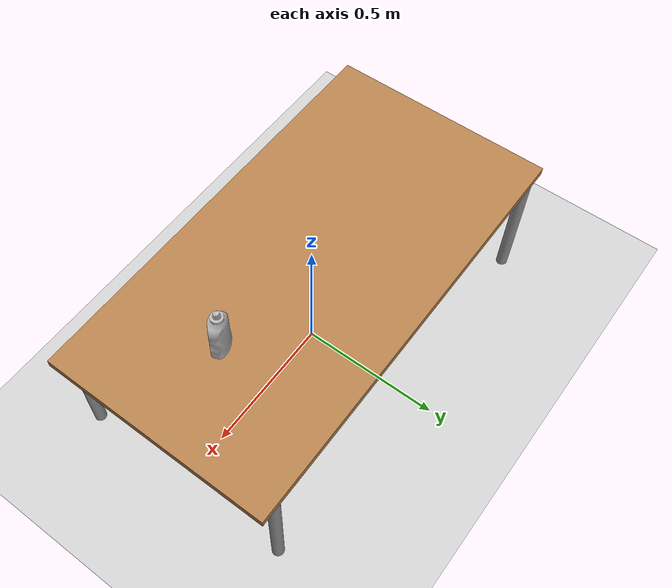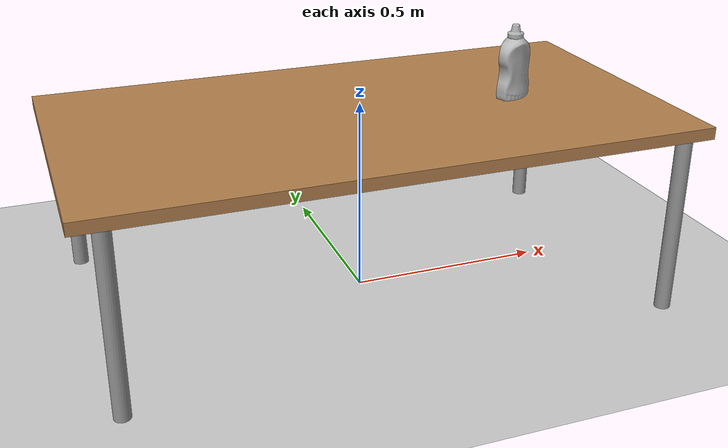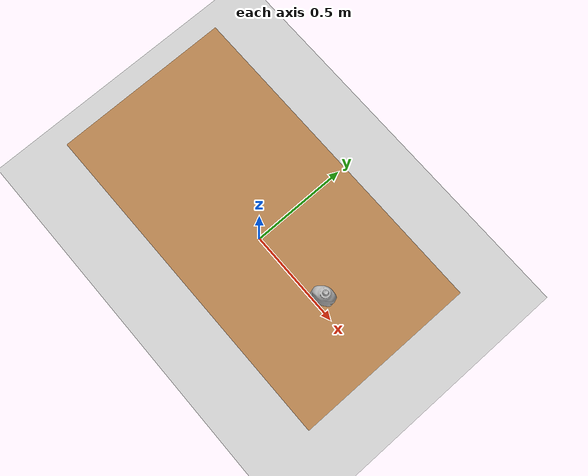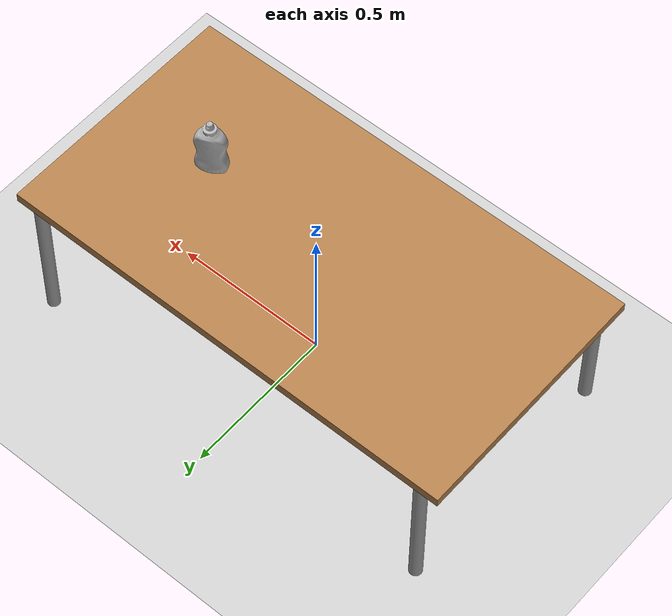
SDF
<sdf version="1.4">
 <world name="default">
  <physics type="dart"/>
  <include><uri>model://ground_plane</uri></include>
  <include><uri>model://sun</uri></include>
  <include><uri>model://mustard_bottle</uri><pose>0.4 0 0.48 0 0 0.8</pose></include>
  <include><uri>model://env_table</uri></include>
 </world>
</sdf>

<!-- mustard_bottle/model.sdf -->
<sdf version="1.7">
    <model name='mustard_bottle'>
        <link name='mustard_bottle_link'>
            <inertial>
            <!-- CoM evaluated using Meshlab assuming a homogeneous body-->
            <!-- expressed w.r.t. the origin of the mesh -->
                <pose>-0.015054 -0.023109 0.075042 0 0 0</pose>
                <mass>0.1</mass>
                <inertia>
                    <!-- Obtained from Meshlab -->
                    <ixx>0.00024306134790849675</ixx>
                    <ixy>1.2579345702614378e-05</ixy>
                    <ixz>-8.24954705882353e-07</ixz>
                    <iyy>0.00026750229779411763</iyy>
                    <iyz>-1.1690506209150325e-06</iyz>
                    <izz>7.015540428104576e-05</izz>
                </inertia>
            </inertial>
            <collision name='mustard_bottle_collision'>
                <surface>
                    <friction>
                        <ode>
                            <mu>1</mu>
                            <mu2>1</mu2>
                        </ode>
                    </friction>
                </surface>
                <max_contacts>1</max_contacts>
                <geometry>
                    <mesh>
                        <uri>model://mustard_bottle/meshes/obj_000005_collision_new.dae</uri>
                    </mesh>
                </geometry>
            </collision>
            <visual name='mustard_bottle_visual'>>
                <geometry>
                    <mesh>
                        <uri>model://mustard_bottle/meshes/obj_000005.dae</uri>
                    </mesh>
                </geometry>
            </visual>
        </link>
    </model>
</sdf>

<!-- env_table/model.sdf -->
<sdf version="1.7">
  <model name="env_table">
    <static>true</static>
    <link name="table_root_link">
      <collision name="table_surface_collision">
	<pose>0 0 0.465 0 0 0</pose>
	<geometry>
          <box>
            <size>1.5 0.8 0.03</size>
          </box>
	</geometry>
	<surface>
          <friction>
            <ode>
              <mu>0.1</mu>
              <mu2>0.1</mu2>
            </ode>
          </friction>
	</surface>
      </collision>
      <visual name="table_surface_visual">
	<pose>0 0 0.465 0 0 0</pose>
	<geometry>
          <box>
            <size>1.5 0.8 0.03</size>
          </box>
	</geometry>
	<material>
          <script>
            <uri>file://media/materials/scripts/gazebo.material</uri>
            <name>Gazebo/Wood</name>
          </script>
	</material>
      </visual>
      <collision name="front_left_leg">
        <pose>0.68 0.38 0.225 0 0 0</pose>
        <geometry>
          <cylinder>
            <radius>0.02</radius>
            <length>0.45</length>
          </cylinder>
        </geometry>
      </collision>
      <visual name="front_left_leg">
        <pose>0.68 0.38 0.225 0 0 0</pose>
        <geometry>
          <cylinder>
            <radius>0.02</radius>
            <length>0.45</length>
          </cylinder>
        </geometry>
        <material>
          <script>
            <uri>file://media/materials/scripts/gazebo.material</uri>
            <name>Gazebo/Grey</name>
          </script>
        </material>
      </visual>
      <collision name="front_right_leg">
        <pose>0.68 -0.38 0.225 0 0 0</pose>
        <geometry>
          <cylinder>
            <radius>0.02</radius>
            <length>0.45</length>
          </cylinder>
        </geometry>
      </collision>
      <visual name="front_right_leg">
        <pose>0.68 -0.38 0.225 0 0 0</pose>
        <geometry>
          <cylinder>
            <radius>0.02</radius>
            <length>0.45</length>
          </cylinder>
        </geometry>
        <material>
          <script>
            <uri>file://media/materials/scripts/gazebo.material</uri>
            <name>Gazebo/Grey</name>
          </script>
        </material>
      </visual>
      <collision name="back_right_leg">
        <pose>-0.68 -0.38 0.225 0 0 0</pose>
        <geometry>
          <cylinder>
            <radius>0.02</radius>
            <length>0.45</length>
          </cylinder>
        </geometry>
      </collision>
      <visual name="back_right_leg">
        <pose>-0.68 -0.38 0.225 0 0 0</pose>
        <geometry>
          <cylinder>
            <radius>0.02</radius>
            <length>0.45</length>
          </cylinder>
        </geometry>
        <material>
          <script>
            <uri>file://media/materials/scripts/gazebo.material</uri>
            <name>Gazebo/Grey</name>
          </script>
        </material>
      </visual>
      <collision name="back_left_leg">
        <pose>-0.68 0.38 0.225 0 0 0</pose>
        <geometry>
          <cylinder>
            <radius>0.02</radius>
            <length>0.45</length>
          </cylinder>
        </geometry>
      </collision>
      <visual name="back_left_leg">
        <pose>-0.68 0.38 0.225 0 0 0</pose>
        <geometry>
          <cylinder>
            <radius>0.02</radius>
            <length>0.45</length>
          </cylinder>
        </geometry>
        <material>
          <script>
            <uri>file://media/materials/scripts/gazebo.material</uri>
            <name>Gazebo/Grey</name>
          </script>
        </material>
      </visual>
    </link>
  </model>
</sdf>
